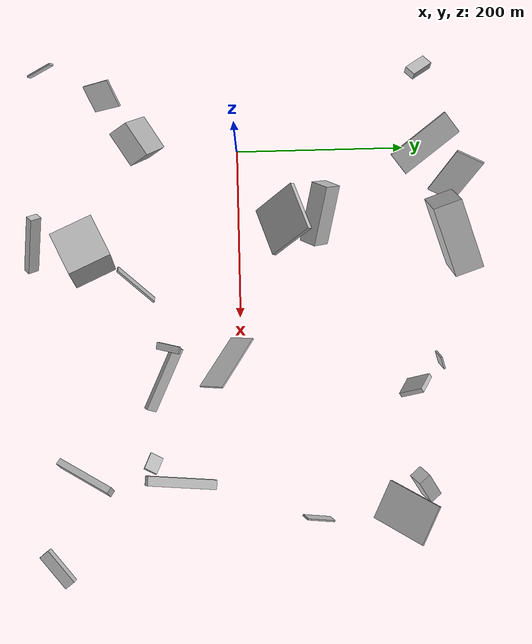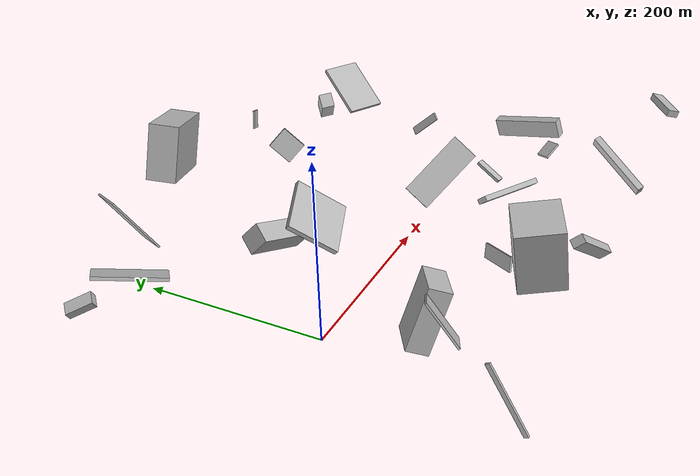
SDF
<sdf version="1.6">
 <world name="default">
  <scene>
   <sky><clouds><speed>12</speed></clouds></sky>
   <ambient>0.4 0.4 0.4 1</ambient>
   <background>0.7 0.7 0.7 1</background>
   <shadows>1</shadows>
  </scene>
  <gravity>0 0 -9.8066</gravity>
  <magnetic_field>6e-06 2.3e-05 -4.2e-05</magnetic_field>
  <physics default="0" name="default_physics" type="ode">
   <ode>
    <solver>
     <type>quick</type>
     <iters>10</iters>
     <sor>1.0</sor>
     <use_dynamic_moi_rescaling>0</use_dynamic_moi_rescaling>
    </solver>
    <constraints>
     <cfm>0</cfm>
     <erp>0.2</erp>
     <contact_max_correcting_vel>100</contact_max_correcting_vel>
     <contact_surface_layer>0.001</contact_surface_layer>
    </constraints>
   </ode>
   <max_step_size>0.004</max_step_size>
   <real_time_factor>1</real_time_factor>
   <real_time_update_rate>250</real_time_update_rate>
  </physics>
  <light name="sun" type="directional">
   <pose>0 0 10 0 0 0</pose>
   <diffuse>0.8 0.8 0.8 1</diffuse>
   <specular>0.2 0.2 0.2 1</specular>
   <attenuation>
    <range>1000</range>
    <constant>0.9</constant>
    <linear>0.01</linear>
    <quadratic>0.001</quadratic>
   </attenuation>
   <direction>-0.5 0.1 -0.9</direction>
  </light>
  <model name="building_1">
   <static>0</static>
   <pose>112.25182574910939 -152.09244246245518 81.75493246375707 1.4543259394136103 -0.13999109796074297 0.4512792505596375</pose>
   <link name="link">
    <gravity>0</gravity>
    <pose>0 0 25.0 0 0 0</pose>
    <collision name="collision"><geometry><box><size>50 74 50</size></box></geometry></collision>
    <visual name="visual">
     <cast_shadows>0</cast_shadows>
     <geometry><box><size>50 74 50</size></box></geometry>
     <material>
      <script>
       <uri>model://HANNAS_wall/materials/scripts</uri>
       <uri>model://HANNAS_wall/materials/textures</uri>
       <name>vrc/HANNAS_wall</name>
      </script>
     </material>
    </visual>
   </link>
  </model>
  <model name="building_2">
   <static>0</static>
   <pose>282.09180948153136 216.55213006632832 36.65452149918342 2.685667788336206 -0.7320379005214726 -0.6626714127647775</pose>
   <link name="link">
    <gravity>0</gravity>
    <pose>0 0 16.0 0 0 0</pose>
    <collision name="collision"><geometry><box><size>28 6 32</size></box></geometry></collision>
    <visual name="visual">
     <cast_shadows>0</cast_shadows>
     <geometry><box><size>28 6 32</size></box></geometry>
     <material>
      <script>
       <uri>model://HANNAS_wall/materials/scripts</uri>
       <uri>model://HANNAS_wall/materials/textures</uri>
       <name>vrc/HANNAS_wall</name>
      </script>
     </material>
    </visual>
   </link>
  </model>
  <model name="building_3">
   <static>0</static>
   <pose>389.0896381612321 -74.63384463188605 54.753482911122454 0.23628439955198846 0.1224632395784821 3.056700341910208</pose>
   <link name="link">
    <gravity>0</gravity>
    <pose>0 0 10.5 0 0 0</pose>
    <collision name="collision"><geometry><box><size>11 80 21</size></box></geometry></collision>
    <visual name="visual">
     <cast_shadows>0</cast_shadows>
     <geometry><box><size>11 80 21</size></box></geometry>
     <material>
      <script>
       <uri>model://HANNAS_wall/materials/scripts</uri>
       <uri>model://HANNAS_wall/materials/textures</uri>
       <name>vrc/HANNAS_wall</name>
      </script>
     </material>
    </visual>
   </link>
  </model>
  <model name="building_4">
   <static>0</static>
   <pose>367.8693050044324 -104.79899005415803 50.093718101168726 0.5504251215333917 -0.18005904278103532 -2.0814029394245535</pose>
   <link name="link">
    <gravity>0</gravity>
    <pose>0 0 1.5 0 0 0</pose>
    <collision name="collision"><geometry><box><size>16 21 3</size></box></geometry></collision>
    <visual name="visual">
     <cast_shadows>0</cast_shadows>
     <geometry><box><size>16 21 3</size></box></geometry>
     <material>
      <script>
       <uri>model://HANNAS_wall/materials/scripts</uri>
       <uri>model://HANNAS_wall/materials/textures</uri>
       <name>vrc/HANNAS_wall</name>
      </script>
     </material>
    </visual>
   </link>
  </model>
  <model name="building_5">
   <static>0</static>
   <pose>418.8020076344129 163.40898546594838 24.603251113909963 -0.9831315220891351 0.07402312722341385 -0.4292618162135019</pose>
   <link name="link">
    <gravity>0</gravity>
    <pose>0 0 34.5 0 0 0</pose>
    <collision name="collision"><geometry><box><size>49 4 69</size></box></geometry></collision>
    <visual name="visual">
     <cast_shadows>0</cast_shadows>
     <geometry><box><size>49 4 69</size></box></geometry>
     <material>
      <script>
       <uri>model://HANNAS_wall/materials/scripts</uri>
       <uri>model://HANNAS_wall/materials/textures</uri>
       <name>vrc/HANNAS_wall</name>
      </script>
     </material>
    </visual>
   </link>
  </model>
  <model name="building_6">
   <static>0</static>
   <pose>-83.70040033158071 219.9111018819085 37.045900751227585 -2.278530981824744 -1.0429367005792074 2.9577832567351</pose>
   <link name="link">
    <gravity>0</gravity>
    <pose>0 0 7.0 0 0 0</pose>
    <collision name="collision"><geometry><box><size>9 29 14</size></box></geometry></collision>
    <visual name="visual">
     <cast_shadows>0</cast_shadows>
     <geometry><box><size>9 29 14</size></box></geometry>
     <material>
      <script>
       <uri>model://HANNAS_wall/materials/scripts</uri>
       <uri>model://HANNAS_wall/materials/textures</uri>
       <name>vrc/HANNAS_wall</name>
      </script>
     </material>
    </visual>
   </link>
  </model>
  <model name="building_7">
   <static>0</static>
   <pose>385.64427210517573 -187.47681378093415 43.39770950285087 -2.1577075068345968 0.9863613031442582 0.45539143499867396</pose>
   <link name="link">
    <gravity>0</gravity>
    <pose>0 0 4.0 0 0 0</pose>
    <collision name="collision"><geometry><box><size>12 80 8</size></box></geometry></collision>
    <visual name="visual">
     <cast_shadows>0</cast_shadows>
     <geometry><box><size>12 80 8</size></box></geometry>
     <material>
      <script>
       <uri>model://HANNAS_wall/materials/scripts</uri>
       <uri>model://HANNAS_wall/materials/textures</uri>
       <name>vrc/HANNAS_wall</name>
      </script>
     </material>
    </visual>
   </link>
  </model>
  <model name="building_8">
   <static>0</static>
   <pose>-48.96977086948724 -162.83859690859404 89.29080646517838 0.6272736871724744 -0.3731176582824439 -2.717273778882136</pose>
   <link name="link">
    <gravity>0</gravity>
    <pose>0 0 24.0 0 0 0</pose>
    <collision name="collision"><geometry><box><size>31 2 48</size></box></geometry></collision>
    <visual name="visual">
     <cast_shadows>0</cast_shadows>
     <geometry><box><size>31 2 48</size></box></geometry>
     <material>
      <script>
       <uri>model://HANNAS_wall/materials/scripts</uri>
       <uri>model://HANNAS_wall/materials/textures</uri>
       <name>vrc/HANNAS_wall</name>
      </script>
     </material>
    </visual>
   </link>
  </model>
  <model name="building_9">
   <static>0</static>
   <pose>260.5801499367432 229.328992209492 69.47783593700991 -0.08884449283323885 -1.1945376252526765 0.40887021564938797</pose>
   <link name="link">
    <gravity>0</gravity>
    <pose>0 0 7.5 0 0 0</pose>
    <collision name="collision"><geometry><box><size>21 2 15</size></box></geometry></collision>
    <visual name="visual">
     <cast_shadows>0</cast_shadows>
     <geometry><box><size>21 2 15</size></box></geometry>
     <material>
      <script>
       <uri>model://HANNAS_wall/materials/scripts</uri>
       <uri>model://HANNAS_wall/materials/textures</uri>
       <name>vrc/HANNAS_wall</name>
      </script>
     </material>
    </visual>
   </link>
  </model>
  <model name="building_10">
   <static>0</static>
   <pose>408.2149755078039 208.52136189529097 26.34252211360759 1.750075604392921 0.813887958268922 -2.310242737296611</pose>
   <link name="link">
    <gravity>0</gravity>
    <pose>0 0 8.0 0 0 0</pose>
    <collision name="collision"><geometry><box><size>18 44 16</size></box></geometry></collision>
    <visual name="visual">
     <cast_shadows>0</cast_shadows>
     <geometry><box><size>18 44 16</size></box></geometry>
     <material>
      <script>
       <uri>model://HANNAS_wall/materials/scripts</uri>
       <uri>model://HANNAS_wall/materials/textures</uri>
       <name>vrc/HANNAS_wall</name>
      </script>
     </material>
    </visual>
   </link>
  </model>
  <model name="building_11">
   <static>0</static>
   <pose>305.7707826812107 -107.49604661732546 41.17613424647651 -1.4368094160211018 -0.8418853677731275 1.0335509373198355</pose>
   <link name="link">
    <gravity>0</gravity>
    <pose>0 0 40.0 0 0 0</pose>
    <collision name="collision"><geometry><box><size>6 14 80</size></box></geometry></collision>
    <visual name="visual">
     <cast_shadows>0</cast_shadows>
     <geometry><box><size>6 14 80</size></box></geometry>
     <material>
      <script>
       <uri>model://HANNAS_wall/materials/scripts</uri>
       <uri>model://HANNAS_wall/materials/textures</uri>
       <name>vrc/HANNAS_wall</name>
      </script>
     </material>
    </visual>
   </link>
  </model>
  <model name="building_12">
   <static>0</static>
   <pose>-86.00946852684875 -220.20030723250886 77.6538833629994 1.5029035207197106 0.5295745603169499 1.4029411838413217</pose>
   <link name="link">
    <gravity>0</gravity>
    <pose>0 0 1.0 0 0 0</pose>
    <collision name="collision"><geometry><box><size>5 74 2</size></box></geometry></collision>
    <visual name="visual">
     <cast_shadows>0</cast_shadows>
     <geometry><box><size>5 74 2</size></box></geometry>
     <material>
      <script>
       <uri>model://HANNAS_wall/materials/scripts</uri>
       <uri>model://HANNAS_wall/materials/textures</uri>
       <name>vrc/HANNAS_wall</name>
      </script>
     </material>
    </visual>
   </link>
  </model>
  <model name="building_13">
   <static>0</static>
   <pose>116.34200531114134 60.85502553852116 85.42197599360397 -1.9917733059196003 -0.6513128268973114 2.1639379948770348</pose>
   <link name="link">
    <gravity>0</gravity>
    <pose>0 0 29.5 0 0 0</pose>
    <collision name="collision"><geometry><box><size>60 6 59</size></box></geometry></collision>
    <visual name="visual">
     <cast_shadows>0</cast_shadows>
     <geometry><box><size>60 6 59</size></box></geometry>
     <material>
      <script>
       <uri>model://HANNAS_wall/materials/scripts</uri>
       <uri>model://HANNAS_wall/materials/textures</uri>
       <name>vrc/HANNAS_wall</name>
      </script>
     </material>
    </visual>
   </link>
  </model>
  <model name="building_14">
   <static>0</static>
   <pose>102.71911529034524 239.83981770583793 75.72300987670067 0.2809244763150741 -0.09444585111743001 1.8980713628612584</pose>
   <link name="link">
    <gravity>0</gravity>
    <pose>0 0 30.5 0 0 0</pose>
    <collision name="collision"><geometry><box><size>32 80 61</size></box></geometry></collision>
    <visual name="visual">
     <cast_shadows>0</cast_shadows>
     <geometry><box><size>32 80 61</size></box></geometry>
     <material>
      <script>
       <uri>model://HANNAS_wall/materials/scripts</uri>
       <uri>model://HANNAS_wall/materials/textures</uri>
       <name>vrc/HANNAS_wall</name>
      </script>
     </material>
    </visual>
   </link>
  </model>
  <model name="building_15">
   <static>0</static>
   <pose>79.47516987074506 103.76706666451815 38.0738347108502 0.44622280444539913 -0.6143702434507868 1.0871698121694913</pose>
   <link name="link">
    <gravity>0</gravity>
    <pose>0 0 12.5 0 0 0</pose>
    <collision name="collision"><geometry><box><size>22 71 25</size></box></geometry></collision>
    <visual name="visual">
     <cast_shadows>0</cast_shadows>
     <geometry><box><size>22 71 25</size></box></geometry>
     <material>
      <script>
       <uri>model://HANNAS_wall/materials/scripts</uri>
       <uri>model://HANNAS_wall/materials/textures</uri>
       <name>vrc/HANNAS_wall</name>
      </script>
     </material>
    </visual>
   </link>
  </model>
  <model name="building_16">
   <static>0</static>
   <pose>2.1052631630884187 -121.00074655712062 71.52714558565162 -1.2275304408272212 0.11717737898263149 0.5678069308636944</pose>
   <link name="link">
    <gravity>0</gravity>
    <pose>0 0 11.5 0 0 0</pose>
    <collision name="collision"><geometry><box><size>42 66 23</size></box></geometry></collision>
    <visual name="visual">
     <cast_shadows>0</cast_shadows>
     <geometry><box><size>42 66 23</size></box></geometry>
     <material>
      <script>
       <uri>model://HANNAS_wall/materials/scripts</uri>
       <uri>model://HANNAS_wall/materials/textures</uri>
       <name>vrc/HANNAS_wall</name>
      </script>
     </material>
    </visual>
   </link>
  </model>
  <model name="building_17">
   <static>0</static>
   <pose>475.4844507971055 -206.66185722968316 83.08105447927835 -1.8606422137278829 0.0037044436821766654 -2.469467571904587</pose>
   <link name="link">
    <gravity>0</gravity>
    <pose>0 0 7.0 0 0 0</pose>
    <collision name="collision"><geometry><box><size>46 8 14</size></box></geometry></collision>
    <visual name="visual">
     <cast_shadows>0</cast_shadows>
     <geometry><box><size>46 8 14</size></box></geometry>
     <material>
      <script>
       <uri>model://HANNAS_wall/materials/scripts</uri>
       <uri>model://HANNAS_wall/materials/textures</uri>
       <name>vrc/HANNAS_wall</name>
      </script>
     </material>
    </visual>
   </link>
  </model>
  <model name="building_18">
   <static>0</static>
   <pose>438.60100212630334 71.51145736992457 23.296796068891467 -2.8901202116430205 -0.7714956617946375 0.9519172628374727</pose>
   <link name="link">
    <gravity>0</gravity>
    <pose>0 0 24.5 0 0 0</pose>
    <collision name="collision"><geometry><box><size>10 2 49</size></box></geometry></collision>
    <visual name="visual">
     <cast_shadows>0</cast_shadows>
     <geometry><box><size>10 2 49</size></box></geometry>
     <material>
      <script>
       <uri>model://HANNAS_wall/materials/scripts</uri>
       <uri>model://HANNAS_wall/materials/textures</uri>
       <name>vrc/HANNAS_wall</name>
      </script>
     </material>
    </visual>
   </link>
  </model>
  <model name="building_19">
   <static>0</static>
   <pose>141.65313826835686 -233.60939731148255 84.72917222999769 0.7808405425002439 0.5661703568869214 -2.284727305978751</pose>
   <link name="link">
    <gravity>0</gravity>
    <pose>0 0 35.5 0 0 0</pose>
    <collision name="collision"><geometry><box><size>9 13 71</size></box></geometry></collision>
    <visual name="visual">
     <cast_shadows>0</cast_shadows>
     <geometry><box><size>9 13 71</size></box></geometry>
     <material>
      <script>
       <uri>model://HANNAS_wall/materials/scripts</uri>
       <uri>model://HANNAS_wall/materials/textures</uri>
       <name>vrc/HANNAS_wall</name>
      </script>
     </material>
    </visual>
   </link>
  </model>
  <model name="building_20">
   <static>0</static>
   <pose>158.19136962452512 -120.89571730934898 34.184946014708075 -2.210773121666798 1.2074221389896915 -2.9782728722252574</pose>
   <link name="link">
    <gravity>0</gravity>
    <pose>0 0 1.0 0 0 0</pose>
    <collision name="collision"><geometry><box><size>16 57 2</size></box></geometry></collision>
    <visual name="visual">
     <cast_shadows>0</cast_shadows>
     <geometry><box><size>16 57 2</size></box></geometry>
     <material>
      <script>
       <uri>model://HANNAS_wall/materials/scripts</uri>
       <uri>model://HANNAS_wall/materials/textures</uri>
       <name>vrc/HANNAS_wall</name>
      </script>
     </material>
    </visual>
   </link>
  </model>
  <model name="building_21">
   <static>0</static>
   <pose>232.87993940119466 -80.50432764503041 86.33429737668564 -0.08561353408313764 0.4628078999943724 -1.7972200195726045</pose>
   <link name="link">
    <gravity>0</gravity>
    <pose>0 0 1.5 0 0 0</pose>
    <collision name="collision"><geometry><box><size>30 8 3</size></box></geometry></collision>
    <visual name="visual">
     <cast_shadows>0</cast_shadows>
     <geometry><box><size>30 8 3</size></box></geometry>
     <material>
      <script>
       <uri>model://HANNAS_wall/materials/scripts</uri>
       <uri>model://HANNAS_wall/materials/textures</uri>
       <name>vrc/HANNAS_wall</name>
      </script>
     </material>
    </visual>
   </link>
  </model>
  <model name="building_22">
   <static>0</static>
   <pose>-26.685202515258396 257.35891112084084 17.865602616824432 2.062710935786968 -1.2093989395826827 0.17555595524118572</pose>
   <link name="link">
    <gravity>0</gravity>
    <pose>0 0 40.0 0 0 0</pose>
    <collision name="collision"><geometry><box><size>4 30 80</size></box></geometry></collision>
    <visual name="visual">
     <cast_shadows>0</cast_shadows>
     <geometry><box><size>4 30 80</size></box></geometry>
     <material>
      <script>
       <uri>model://HANNAS_wall/materials/scripts</uri>
       <uri>model://HANNAS_wall/materials/textures</uri>
       <name>vrc/HANNAS_wall</name>
      </script>
     </material>
    </visual>
   </link>
  </model>
  <model name="building_23">
   <static>0</static>
   <pose>251.27926670762554 -29.236992075811383 50.748689682821336 0.7987488131647386 -0.585130864914197 -2.6777629276686854</pose>
   <link name="link">
    <gravity>0</gravity>
    <pose>0 0 16.0 0 0 0</pose>
    <collision name="collision"><geometry><box><size>2 80 32</size></box></geometry></collision>
    <visual name="visual">
     <cast_shadows>0</cast_shadows>
     <geometry><box><size>2 80 32</size></box></geometry>
     <material>
      <script>
       <uri>model://HANNAS_wall/materials/scripts</uri>
       <uri>model://HANNAS_wall/materials/textures</uri>
       <name>vrc/HANNAS_wall</name>
      </script>
     </material>
    </visual>
   </link>
  </model>
  <model name="building_24">
   <static>0</static>
   <pose>48.574468853717974 270.10970152264525 42.415794214484215 1.4530023801135297 -0.5342665993201737 -0.37407967025738253</pose>
   <link name="link">
    <gravity>0</gravity>
    <pose>0 0 17.0 0 0 0</pose>
    <collision name="collision"><geometry><box><size>2 80 34</size></box></geometry></collision>
    <visual name="visual">
     <cast_shadows>0</cast_shadows>
     <geometry><box><size>2 80 34</size></box></geometry>
     <material>
      <script>
       <uri>model://HANNAS_wall/materials/scripts</uri>
       <uri>model://HANNAS_wall/materials/textures</uri>
       <name>vrc/HANNAS_wall</name>
      </script>
     </material>
    </visual>
   </link>
  </model>
 </world>
</sdf>
